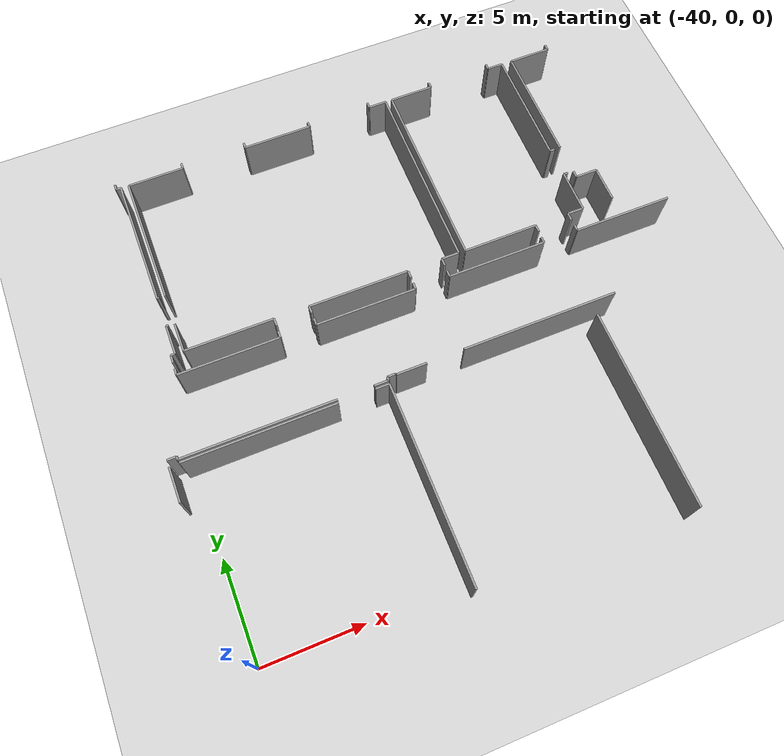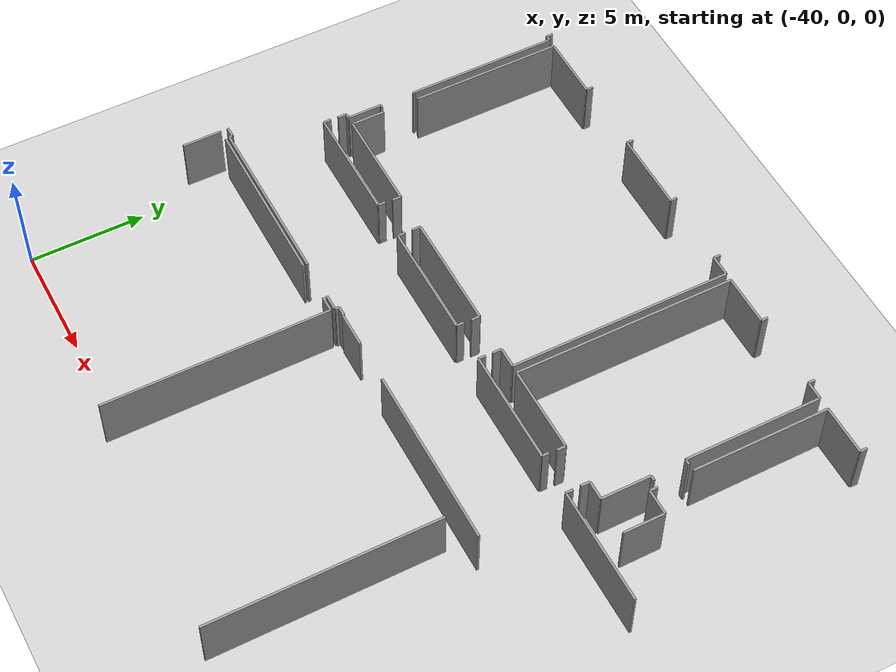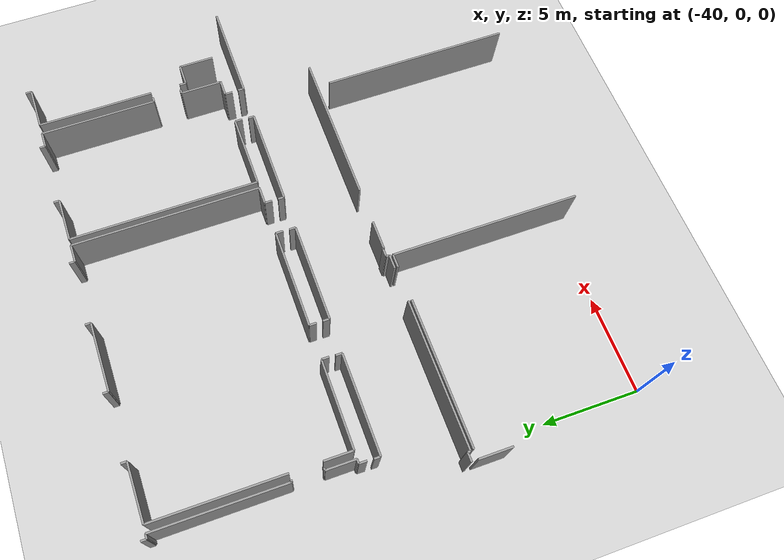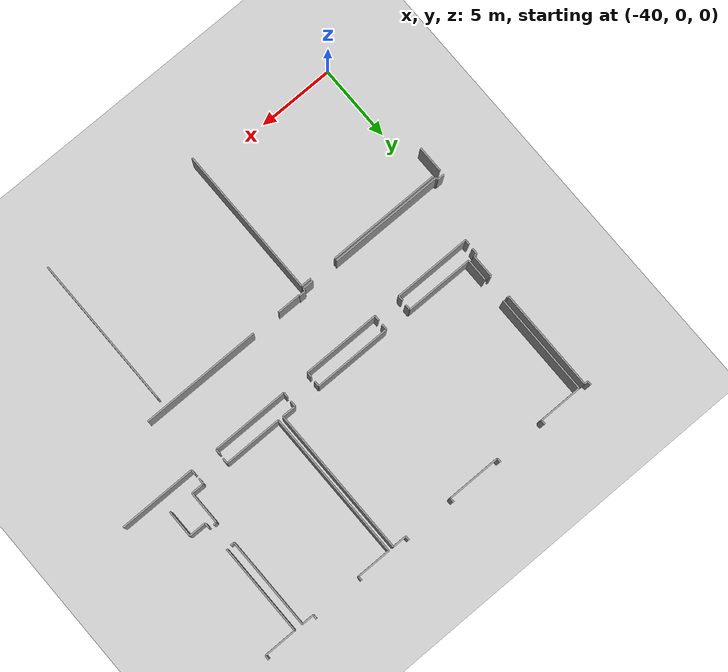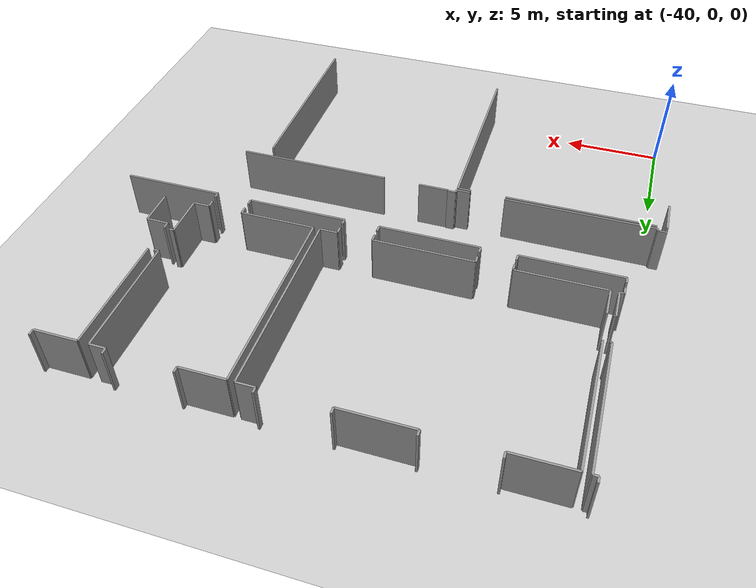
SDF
<sdf version="1.6">
 <world name="default">
  <model name="ground_plane">
   <static>1</static>
   <link name="link">
    <collision name="collision">
     <geometry><plane><normal>0 0 1</normal><size>100 100</size></plane></geometry>
     <surface><friction><ode><mu>100</mu><mu2>50</mu2></ode></friction></surface>
    </collision>
    <visual name="visual">
     <cast_shadows>0</cast_shadows>
     <geometry><plane><normal>0 0 1</normal><size>100 100</size></plane></geometry>
     <material>
      <script><uri>file://media/materials/scripts/gazebo.material</uri><name>Gazebo/Grey</name></script>
     </material>
    </visual>
   </link>
  </model>
  <model name="0510032197_A_40_1_105">
   <static>1</static>
   <link name="Wall_37">
    <collision name="Wall_37_Collision">
     <geometry><box><size>0.279998474815 0.1 2.5</size></box></geometry>
     <pose>0.139999237408 0 1.25 0 0 0</pose>
    </collision>
    <visual name="Wall_37_Visual">
     <pose>0.139999237408 0 1.25 0 0 0</pose>
     <geometry><box><size>0.279998474815 0.1 2.5</size></box></geometry>
     <material>
      <script><uri>file://media/materials/scripts/gazebo.material</uri><name>Gazebo/Grey</name></script>
      <ambient>1 1 1 1</ambient>
     </material>
    </visual>
    <pose>26.2868109661 -0.0165228332846 0 0 0 -1.57079632679</pose>
   </link>
   <link name="Wall_38">
    <collision name="Wall_38_Collision">
     <geometry><box><size>0.234751331359 0.1 2.5</size></box></geometry>
     <pose>0.11737566568 0 1.25 0 0 0</pose>
    </collision>
    <visual name="Wall_38_Visual">
     <pose>0.11737566568 0 1.25 0 0 0</pose>
     <geometry><box><size>0.234751331359 0.1 2.5</size></box></geometry>
     <material>
      <script><uri>file://media/materials/scripts/gazebo.material</uri><name>Gazebo/Grey</name></script>
      <ambient>1 1 1 1</ambient>
     </material>
    </visual>
    <pose>26.2868109661 -0.2965213081 0 0 0 0.0</pose>
   </link>
   <link name="Wall_39">
    <collision name="Wall_39_Collision">
     <geometry><box><size>6.61599664459 0.1 2.5</size></box></geometry>
     <pose>3.3079983223 0 1.25 0 0 0</pose>
    </collision>
    <visual name="Wall_39_Visual">
     <pose>3.3079983223 0 1.25 0 0 0</pose>
     <geometry><box><size>6.61599664459 0.1 2.5</size></box></geometry>
     <material>
      <script><uri>file://media/materials/scripts/gazebo.material</uri><name>Gazebo/Grey</name></script>
      <ambient>1 1 1 1</ambient>
     </material>
    </visual>
    <pose>26.5215622974 -0.2965213081 0 0 0 -1.57079632679</pose>
   </link>
   <link name="Wall_40">
    <collision name="Wall_40_Collision">
     <geometry><box><size>0.105619034304 0.1 2.5</size></box></geometry>
     <pose>0.052809517152 0 1.25 0 0 0</pose>
    </collision>
    <visual name="Wall_40_Visual">
     <pose>0.052809517152 0 1.25 0 0 0</pose>
     <geometry><box><size>0.105619034304 0.1 2.5</size></box></geometry>
     <material>
      <script><uri>file://media/materials/scripts/gazebo.material</uri><name>Gazebo/Grey</name></script>
      <ambient>1 1 1 1</ambient>
     </material>
    </visual>
    <pose>26.5215622974 -6.91251795269 0 0 0 0.0</pose>
   </link>
   <link name="Wall_41">
    <collision name="Wall_41_Collision">
     <geometry><box><size>0.109050699678 0.1 2.5</size></box></geometry>
     <pose>0.0545253498392 0 1.25 0 0 0</pose>
    </collision>
    <visual name="Wall_41_Visual">
     <pose>0.0545253498392 0 1.25 0 0 0</pose>
     <geometry><box><size>0.109050699678 0.1 2.5</size></box></geometry>
     <material>
      <script><uri>file://media/materials/scripts/gazebo.material</uri><name>Gazebo/Grey</name></script>
      <ambient>1 1 1 1</ambient>
     </material>
    </visual>
    <pose>26.6271813317 -8.45867385198 0 0 0 3.14159265359</pose>
   </link>
   <link name="Wall_42">
    <collision name="Wall_42_Collision">
     <geometry><box><size>1.50345073018 0.1 2.5</size></box></geometry>
     <pose>0.751725365091 0 1.25 0 0 0</pose>
    </collision>
    <visual name="Wall_42_Visual">
     <pose>0.751725365091 0 1.25 0 0 0</pose>
     <geometry><box><size>1.50345073018 0.1 2.5</size></box></geometry>
     <material>
      <script><uri>file://media/materials/scripts/gazebo.material</uri><name>Gazebo/Grey</name></script>
      <ambient>1 1 1 1</ambient>
     </material>
    </visual>
    <pose>26.5181306321 -8.45867385198 0 0 0 -1.57079632679</pose>
   </link>
   <link name="Wall_43">
    <collision name="Wall_43_Collision">
     <geometry><box><size>0.215178128853 0.1 2.5</size></box></geometry>
     <pose>0.107589064426 0 1.25 0 0 0</pose>
    </collision>
    <visual name="Wall_43_Visual">
     <pose>0.107589064426 0 1.25 0 0 0</pose>
     <geometry><box><size>0.215178128853 0.1 2.5</size></box></geometry>
     <material>
      <script><uri>file://media/materials/scripts/gazebo.material</uri><name>Gazebo/Grey</name></script>
      <ambient>1 1 1 1</ambient>
     </material>
    </visual>
    <pose>26.5181306321 -9.96212458216 0 0 0 3.14159265359</pose>
   </link>
   <link name="Wall_44">
    <collision name="Wall_44_Collision">
     <geometry><box><size>0.390065964234 0.1 2.5</size></box></geometry>
     <pose>0.195032982117 0 1.25 0 0 0</pose>
    </collision>
    <visual name="Wall_44_Visual">
     <pose>0.195032982117 0 1.25 0 0 0</pose>
     <geometry><box><size>0.390065964234 0.1 2.5</size></box></geometry>
     <material>
      <script><uri>file://media/materials/scripts/gazebo.material</uri><name>Gazebo/Grey</name></script>
      <ambient>1 1 1 1</ambient>
     </material>
    </visual>
    <pose>26.3029525032 -9.96212458216 0 0 0 -1.57079632679</pose>
   </link>
   <link name="Wall_47">
    <collision name="Wall_47_Collision">
     <geometry><box><size>1.45972877134 0.1 2.5</size></box></geometry>
     <pose>0.729864385668 0 1.25 0 0 0</pose>
    </collision>
    <visual name="Wall_47_Visual">
     <pose>0.729864385668 0 1.25 0 0 0</pose>
     <geometry><box><size>1.45972877134 0.1 2.5</size></box></geometry>
     <material>
      <script><uri>file://media/materials/scripts/gazebo.material</uri><name>Gazebo/Grey</name></script>
      <ambient>1 1 1 1</ambient>
     </material>
    </visual>
    <pose>26.9181102963 -9.96898791291 0 0 0 1.57079632679</pose>
   </link>
   <link name="Wall_48">
    <collision name="Wall_48_Collision">
     <geometry><box><size>6.6051932536 0.1 2.5</size></box></geometry>
     <pose>3.3025966268 0 1.25 0 0 0</pose>
    </collision>
    <visual name="Wall_48_Visual">
     <pose>3.3025966268 0 1.25 0 0 0</pose>
     <geometry><box><size>6.6051932536 0.1 2.5</size></box></geometry>
     <material>
      <script><uri>file://media/materials/scripts/gazebo.material</uri><name>Gazebo/Grey</name></script>
      <ambient>1 1 1 1</ambient>
     </material>
    </visual>
    <pose>26.9181102963 -6.91772900011 0 0 0 1.57079632679</pose>
   </link>
   <link name="Wall_49">
    <collision name="Wall_49_Collision">
     <geometry><box><size>2.84103763393 0.1 2.5</size></box></geometry>
     <pose>1.42051881697 0 1.25 0 0 0</pose>
    </collision>
    <visual name="Wall_49_Visual">
     <pose>1.42051881697 0 1.25 0 0 0</pose>
     <geometry><box><size>2.84103763393 0.1 2.5</size></box></geometry>
     <material>
      <script><uri>file://media/materials/scripts/gazebo.material</uri><name>Gazebo/Grey</name></script>
      <ambient>1 1 1 1</ambient>
     </material>
    </visual>
    <pose>26.9181102963 -0.312535746514 0 0 0 0.0</pose>
   </link>
   <link name="Wall_50">
    <collision name="Wall_50_Collision">
     <geometry><box><size>0.297919393993 0.1 2.5</size></box></geometry>
     <pose>0.148959696997 0 1.25 0 0 0</pose>
    </collision>
    <visual name="Wall_50_Visual">
     <pose>0.148959696997 0 1.25 0 0 0</pose>
     <geometry><box><size>0.297919393993 0.1 2.5</size></box></geometry>
     <material>
      <script><uri>file://media/materials/scripts/gazebo.material</uri><name>Gazebo/Grey</name></script>
      <ambient>1 1 1 1</ambient>
     </material>
    </visual>
    <pose>29.7591479302 -0.312535746514 0 0 0 1.57079632679</pose>
   </link>
   <link name="Wall_51">
    <collision name="Wall_51_Collision">
     <geometry><box><size>0.28393853506 0.1 2.5</size></box></geometry>
     <pose>0.14196926753 0 1.25 0 0 0</pose>
    </collision>
    <visual name="Wall_51_Visual">
     <pose>0.14196926753 0 1.25 0 0 0</pose>
     <geometry><box><size>0.28393853506 0.1 2.5</size></box></geometry>
     <material>
      <script><uri>file://media/materials/scripts/gazebo.material</uri><name>Gazebo/Grey</name></script>
      <ambient>1 1 1 1</ambient>
     </material>
    </visual>
    <pose>33.1005732152 -0.014616352521 0 0 0 -1.57079632679</pose>
   </link>
   <link name="Wall_52">
    <collision name="Wall_52_Collision">
     <geometry><box><size>3.50462003838 0.1 2.5</size></box></geometry>
     <pose>1.75231001919 0 1.25 0 0 0</pose>
    </collision>
    <visual name="Wall_52_Visual">
     <pose>1.75231001919 0 1.25 0 0 0</pose>
     <geometry><box><size>3.50462003838 0.1 2.5</size></box></geometry>
     <material>
      <script><uri>file://media/materials/scripts/gazebo.material</uri><name>Gazebo/Grey</name></script>
      <ambient>1 1 1 1</ambient>
     </material>
    </visual>
    <pose>33.1005732152 -0.298554887581 0 0 0 0.0</pose>
   </link>
   <link name="Wall_53">
    <collision name="Wall_53_Collision">
     <geometry><box><size>0.288386990175 0.1 2.5</size></box></geometry>
     <pose>0.144193495088 0 1.25 0 0 0</pose>
    </collision>
    <visual name="Wall_53_Visual">
     <pose>0.144193495088 0 1.25 0 0 0</pose>
     <geometry><box><size>0.288386990175 0.1 2.5</size></box></geometry>
     <material>
      <script><uri>file://media/materials/scripts/gazebo.material</uri><name>Gazebo/Grey</name></script>
      <ambient>1 1 1 1</ambient>
     </material>
    </visual>
    <pose>36.6051932536 -0.298554887581 0 0 0 1.57079632679</pose>
   </link>
   <link name="Wall_54">
    <collision name="Wall_54_Collision">
     <geometry><box><size>0.289912174786 0.1 2.5</size></box></geometry>
     <pose>0.144956087393 0 1.25 0 0 0</pose>
    </collision>
    <visual name="Wall_54_Visual">
     <pose>0.144956087393 0 1.25 0 0 0</pose>
     <geometry><box><size>0.289912174786 0.1 2.5</size></box></geometry>
     <material>
      <script><uri>file://media/materials/scripts/gazebo.material</uri><name>Gazebo/Grey</name></script>
      <ambient>1 1 1 1</ambient>
     </material>
    </visual>
    <pose>39.9308582976 -0.0101678974059 0 0 0 -1.57079632679</pose>
   </link>
   <link name="Wall_55">
    <collision name="Wall_55_Collision">
     <geometry><box><size>0.917398543449 0.1 2.5</size></box></geometry>
     <pose>0.458699271724 0 1.25 0 0 0</pose>
    </collision>
    <visual name="Wall_55_Visual">
     <pose>0.458699271724 0 1.25 0 0 0</pose>
     <geometry><box><size>0.917398543449 0.1 2.5</size></box></geometry>
     <material>
      <script><uri>file://media/materials/scripts/gazebo.material</uri><name>Gazebo/Grey</name></script>
      <ambient>1 1 1 1</ambient>
     </material>
    </visual>
    <pose>39.9308582976 -0.300080072192 0 0 0 0.0</pose>
   </link>
   <link name="Wall_56">
    <collision name="Wall_56_Collision">
     <geometry><box><size>9.67666086249 0.1 2.5</size></box></geometry>
     <pose>4.83833043125 0 1.25 0 0 0</pose>
    </collision>
    <visual name="Wall_56_Visual">
     <pose>4.83833043125 0 1.25 0 0 0</pose>
     <geometry><box><size>9.67666086249 0.1 2.5</size></box></geometry>
     <material>
      <script><uri>file://media/materials/scripts/gazebo.material</uri><name>Gazebo/Grey</name></script>
      <ambient>1 1 1 1</ambient>
     </material>
    </visual>
    <pose>40.8482568411 -0.300080072192 0 0 0 -1.57079632679</pose>
   </link>
   <link name="Wall_57">
    <collision name="Wall_57_Collision">
     <geometry><box><size>0.902782190928 0.1 2.5</size></box></geometry>
     <pose>0.451391095464 0 1.25 0 0 0</pose>
    </collision>
    <visual name="Wall_57_Visual">
     <pose>0.451391095464 0 1.25 0 0 0</pose>
     <geometry><box><size>0.902782190928 0.1 2.5</size></box></geometry>
     <material>
      <script><uri>file://media/materials/scripts/gazebo.material</uri><name>Gazebo/Grey</name></script>
      <ambient>1 1 1 1</ambient>
     </material>
    </visual>
    <pose>40.8482568411 -9.97674093468 0 0 0 3.14159265359</pose>
   </link>
   <link name="Wall_58">
    <collision name="Wall_58_Collision">
     <geometry><box><size>0.381169054004 0.1 2.5</size></box></geometry>
     <pose>0.190584527002 0 1.25 0 0 0</pose>
    </collision>
    <visual name="Wall_58_Visual">
     <pose>0.190584527002 0 1.25 0 0 0</pose>
     <geometry><box><size>0.381169054004 0.1 2.5</size></box></geometry>
     <material>
      <script><uri>file://media/materials/scripts/gazebo.material</uri><name>Gazebo/Grey</name></script>
      <ambient>1 1 1 1</ambient>
     </material>
    </visual>
    <pose>39.9454746502 -9.97674093468 0 0 0 -1.57079632679</pose>
   </link>
   <link name="Wall_59">
    <collision name="Wall_59_Collision">
     <geometry><box><size>0.373797328385 0.1 2.5</size></box></geometry>
     <pose>0.186898664192 0 1.25 0 0 0</pose>
    </collision>
    <visual name="Wall_59_Visual">
     <pose>0.186898664192 0 1.25 0 0 0</pose>
     <geometry><box><size>0.373797328385 0.1 2.5</size></box></geometry>
     <material>
      <script><uri>file://media/materials/scripts/gazebo.material</uri><name>Gazebo/Grey</name></script>
      <ambient>1 1 1 1</ambient>
     </material>
    </visual>
    <pose>38.1732101323 -10.3579099887 0 0 0 1.57079632679</pose>
   </link>
   <link name="Wall_60">
    <collision name="Wall_60_Collision">
     <geometry><box><size>5.06246901969 0.1 2.5</size></box></geometry>
     <pose>2.53123450984 0 1.25 0 0 0</pose>
    </collision>
    <visual name="Wall_60_Visual">
     <pose>2.53123450984 0 1.25 0 0 0</pose>
     <geometry><box><size>5.06246901969 0.1 2.5</size></box></geometry>
     <material>
      <script><uri>file://media/materials/scripts/gazebo.material</uri><name>Gazebo/Grey</name></script>
      <ambient>1 1 1 1</ambient>
     </material>
    </visual>
    <pose>38.1732101323 -9.9841126603 0 0 0 3.14159265359</pose>
   </link>
   <link name="Wall_61">
    <collision name="Wall_61_Collision">
     <geometry><box><size>0.37036566301 0.1 2.5</size></box></geometry>
     <pose>0.185182831505 0 1.25 0 0 0</pose>
    </collision>
    <visual name="Wall_61_Visual">
     <pose>0.185182831505 0 1.25 0 0 0</pose>
     <geometry><box><size>0.37036566301 0.1 2.5</size></box></geometry>
     <material>
      <script><uri>file://media/materials/scripts/gazebo.material</uri><name>Gazebo/Grey</name></script>
      <ambient>1 1 1 1</ambient>
     </material>
    </visual>
    <pose>33.1107411126 -9.9841126603 0 0 0 -1.57079632679</pose>
   </link>
   <link name="Wall_62">
    <collision name="Wall_62_Collision">
     <geometry><box><size>0.375830907866 0.1 2.5</size></box></geometry>
     <pose>0.187915453933 0 1.25 0 0 0</pose>
    </collision>
    <visual name="Wall_62_Visual">
     <pose>0.187915453933 0 1.25 0 0 0</pose>
     <geometry><box><size>0.375830907866 0.1 2.5</size></box></geometry>
     <material>
      <script><uri>file://media/materials/scripts/gazebo.material</uri><name>Gazebo/Grey</name></script>
      <ambient>1 1 1 1</ambient>
     </material>
    </visual>
    <pose>31.3527116511 -10.3544783233 0 0 0 1.57079632679</pose>
   </link>
   <link name="Wall_63">
    <collision name="Wall_63_Collision">
     <geometry><box><size>4.43461187508 0.1 2.5</size></box></geometry>
     <pose>2.21730593754 0 1.25 0 0 0</pose>
    </collision>
    <visual name="Wall_63_Visual">
     <pose>2.21730593754 0 1.25 0 0 0</pose>
     <geometry><box><size>4.43461187508 0.1 2.5</size></box></geometry>
     <material>
      <script><uri>file://media/materials/scripts/gazebo.material</uri><name>Gazebo/Grey</name></script>
      <ambient>1 1 1 1</ambient>
     </material>
    </visual>
    <pose>31.3527116511 -9.97864741545 0 0 0 3.13941444489</pose>
   </link>
   <link name="Wall_64">
    <collision name="Wall_64_Collision">
     <geometry><box><size>9.68568487144 0.1 2.5</size></box></geometry>
     <pose>4.84284243572 0 1.25 0 0 0</pose>
    </collision>
    <visual name="Wall_64_Visual">
     <pose>4.84284243572 0 1.25 0 0 0</pose>
     <geometry><box><size>9.68568487144 0.1 2.5</size></box></geometry>
     <material>
      <script><uri>file://media/materials/scripts/gazebo.material</uri><name>Gazebo/Grey</name></script>
      <ambient>1 1 1 1</ambient>
     </material>
    </visual>
    <pose>41.1910420824 -9.9884340167 0 0 0 1.57079632679</pose>
   </link>
   <link name="Wall_65">
    <collision name="Wall_65_Collision">
     <geometry><box><size>2.23973360109 0.1 2.5</size></box></geometry>
     <pose>1.11986680054 0 1.25 0 0 0</pose>
    </collision>
    <visual name="Wall_65_Visual">
     <pose>1.11986680054 0 1.25 0 0 0</pose>
     <geometry><box><size>2.23973360109 0.1 2.5</size></box></geometry>
     <material>
      <script><uri>file://media/materials/scripts/gazebo.material</uri><name>Gazebo/Grey</name></script>
      <ambient>1 1 1 1</ambient>
     </material>
    </visual>
    <pose>41.1910420824 -0.302749145261 0 0 0 0.0</pose>
   </link>
   <link name="Wall_66">
    <collision name="Wall_66_Collision">
     <geometry><box><size>0.292581247855 0.1 2.5</size></box></geometry>
     <pose>0.146290623928 0 1.25 0 0 0</pose>
    </collision>
    <visual name="Wall_66_Visual">
     <pose>0.146290623928 0 1.25 0 0 0</pose>
     <geometry><box><size>0.292581247855 0.1 2.5</size></box></geometry>
     <material>
      <script><uri>file://media/materials/scripts/gazebo.material</uri><name>Gazebo/Grey</name></script>
      <ambient>1 1 1 1</ambient>
     </material>
    </visual>
    <pose>43.4307756835 -0.302749145261 0 0 0 1.57079632679</pose>
   </link>
   <link name="Wall_67">
    <collision name="Wall_67_Collision">
     <geometry><box><size>0.29702970297 0.1 2.5</size></box></geometry>
     <pose>0.148514851485 0 1.25 0 0 0</pose>
    </collision>
    <visual name="Wall_67_Visual">
     <pose>0.148514851485 0 1.25 0 0 0</pose>
     <geometry><box><size>0.29702970297 0.1 2.5</size></box></geometry>
     <material>
      <script><uri>file://media/materials/scripts/gazebo.material</uri><name>Gazebo/Grey</name></script>
      <ambient>1 1 1 1</ambient>
     </material>
    </visual>
    <pose>46.7598723929 -0.0101678974059 0 0 0 -1.57079632679</pose>
   </link>
   <link name="Wall_68">
    <collision name="Wall_68_Collision">
     <geometry><box><size>0.802501302762 0.1 2.5</size></box></geometry>
     <pose>0.401250651381 0 1.25 0 0 0</pose>
    </collision>
    <visual name="Wall_68_Visual">
     <pose>0.401250651381 0 1.25 0 0 0</pose>
     <geometry><box><size>0.802501302762 0.1 2.5</size></box></geometry>
     <material>
      <script><uri>file://media/materials/scripts/gazebo.material</uri><name>Gazebo/Grey</name></script>
      <ambient>1 1 1 1</ambient>
     </material>
    </visual>
    <pose>46.7598723929 -0.307197600376 0 0 0 0.0</pose>
   </link>
   <link name="Wall_69">
    <collision name="Wall_69_Collision">
     <geometry><box><size>5.98406182082 0.1 2.5</size></box></geometry>
     <pose>2.99203091041 0 1.25 0 0 0</pose>
    </collision>
    <visual name="Wall_69_Visual">
     <pose>2.99203091041 0 1.25 0 0 0</pose>
     <geometry><box><size>5.98406182082 0.1 2.5</size></box></geometry>
     <material>
      <script><uri>file://media/materials/scripts/gazebo.material</uri><name>Gazebo/Grey</name></script>
      <ambient>1 1 1 1</ambient>
     </material>
    </visual>
    <pose>47.5623736956 -0.307197600376 0 0 0 -1.57079632679</pose>
   </link>
   <link name="Wall_70">
    <collision name="Wall_70_Collision">
     <geometry><box><size>0.246444413376 0.1 2.5</size></box></geometry>
     <pose>0.123222206688 0 1.25 0 0 0</pose>
    </collision>
    <visual name="Wall_70_Visual">
     <pose>0.123222206688 0 1.25 0 0 0</pose>
     <geometry><box><size>0.246444413376 0.1 2.5</size></box></geometry>
     <material>
      <script><uri>file://media/materials/scripts/gazebo.material</uri><name>Gazebo/Grey</name></script>
      <ambient>1 1 1 1</ambient>
     </material>
    </visual>
    <pose>47.5623736956 -6.29125942119 0 0 0 0.0</pose>
   </link>
   <link name="Wall_71">
    <collision name="Wall_71_Collision">
     <geometry><box><size>0.221151768579 0.1 2.5</size></box></geometry>
     <pose>0.110575884289 0 1.25 0 0 0</pose>
    </collision>
    <visual name="Wall_71_Visual">
     <pose>0.110575884289 0 1.25 0 0 0</pose>
     <geometry><box><size>0.221151768579 0.1 2.5</size></box></geometry>
     <material>
      <script><uri>file://media/materials/scripts/gazebo.material</uri><name>Gazebo/Grey</name></script>
      <ambient>1 1 1 1</ambient>
     </material>
    </visual>
    <pose>47.808818109 -7.80780131928 0 0 0 3.14159265359</pose>
   </link>
   <link name="Wall_72">
    <collision name="Wall_72_Collision">
     <geometry><box><size>2.15483165775 0.1 2.5</size></box></geometry>
     <pose>1.07741582887 0 1.25 0 0 0</pose>
    </collision>
    <visual name="Wall_72_Visual">
     <pose>1.07741582887 0 1.25 0 0 0</pose>
     <geometry><box><size>2.15483165775 0.1 2.5</size></box></geometry>
     <material>
      <script><uri>file://media/materials/scripts/gazebo.material</uri><name>Gazebo/Grey</name></script>
      <ambient>1 1 1 1</ambient>
     </material>
    </visual>
    <pose>47.5876663404 -7.80780131928 0 0 0 -1.57079632679</pose>
   </link>
   <link name="Wall_73">
    <collision name="Wall_73_Collision">
     <geometry><box><size>0.827793947559 0.1 2.5</size></box></geometry>
     <pose>0.41389697378 0 1.25 0 0 0</pose>
    </collision>
    <visual name="Wall_73_Visual">
     <pose>0.41389697378 0 1.25 0 0 0</pose>
     <geometry><box><size>0.827793947559 0.1 2.5</size></box></geometry>
     <material>
      <script><uri>file://media/materials/scripts/gazebo.material</uri><name>Gazebo/Grey</name></script>
      <ambient>1 1 1 1</ambient>
     </material>
    </visual>
    <pose>47.5876663404 -9.96263297703 0 0 0 3.14159265359</pose>
   </link>
   <link name="Wall_74">
    <collision name="Wall_74_Collision">
     <geometry><box><size>0.39184534628 0.1 2.5</size></box></geometry>
     <pose>0.19592267314 0 1.25 0 0 0</pose>
    </collision>
    <visual name="Wall_74_Visual">
     <pose>0.19592267314 0 1.25 0 0 0</pose>
     <geometry><box><size>0.39184534628 0.1 2.5</size></box></geometry>
     <material>
      <script><uri>file://media/materials/scripts/gazebo.material</uri><name>Gazebo/Grey</name></script>
      <ambient>1 1 1 1</ambient>
     </material>
    </visual>
    <pose>46.7598723929 -9.96263297703 0 0 0 -1.57079632679</pose>
   </link>
   <link name="Wall_75">
    <collision name="Wall_75_Collision">
     <geometry><box><size>0.37773738863 0.1 2.5</size></box></geometry>
     <pose>0.188868694315 0 1.25 0 0 0</pose>
    </collision>
    <visual name="Wall_75_Visual">
     <pose>0.188868694315 0 1.25 0 0 0</pose>
     <geometry><box><size>0.37773738863 0.1 2.5</size></box></geometry>
     <material>
      <script><uri>file://media/materials/scripts/gazebo.material</uri><name>Gazebo/Grey</name></script>
      <ambient>1 1 1 1</ambient>
     </material>
    </visual>
    <pose>44.9813800379 -10.3544783233 0 0 0 1.57079632679</pose>
   </link>
   <link name="Wall_76">
    <collision name="Wall_76_Collision">
     <geometry><box><size>3.79035599186 0.1 2.5</size></box></geometry>
     <pose>1.89517799593 0 1.25 0 0 0</pose>
    </collision>
    <visual name="Wall_76_Visual">
     <pose>1.89517799593 0 1.25 0 0 0</pose>
     <geometry><box><size>3.79035599186 0.1 2.5</size></box></geometry>
     <material>
      <script><uri>file://media/materials/scripts/gazebo.material</uri><name>Gazebo/Grey</name></script>
      <ambient>1 1 1 1</ambient>
     </material>
    </visual>
    <pose>44.9813800379 -9.97674093468 0 0 0 -3.13850769255</pose>
   </link>
   <link name="Wall_77">
    <collision name="Wall_77_Collision">
     <geometry><box><size>1.79094802933 0.1 2.5</size></box></geometry>
     <pose>0.895474014667 0 1.25 0 0 0</pose>
    </collision>
    <visual name="Wall_77_Visual">
     <pose>0.895474014667 0 1.25 0 0 0</pose>
     <geometry><box><size>1.79094802933 0.1 2.5</size></box></geometry>
     <material>
      <script><uri>file://media/materials/scripts/gazebo.material</uri><name>Gazebo/Grey</name></script>
      <ambient>1 1 1 1</ambient>
     </material>
    </visual>
    <pose>49.2220287497 -9.98004550134 0 0 0 1.57079632679</pose>
   </link>
   <link name="Wall_78">
    <collision name="Wall_78_Collision">
     <geometry><box><size>1.10982600186 0.1 2.5</size></box></geometry>
     <pose>0.554913000928 0 1.25 0 0 0</pose>
    </collision>
    <visual name="Wall_78_Visual">
     <pose>0.554913000928 0 1.25 0 0 0</pose>
     <geometry><box><size>1.10982600186 0.1 2.5</size></box></geometry>
     <material>
      <script><uri>file://media/materials/scripts/gazebo.material</uri><name>Gazebo/Grey</name></script>
      <ambient>1 1 1 1</ambient>
     </material>
    </visual>
    <pose>49.2220287497 -8.18909747201 0 0 0 3.14159265359</pose>
   </link>
   <link name="Wall_79">
    <collision name="Wall_79_Collision">
     <geometry><box><size>0.343293636167 0.1 2.5</size></box></geometry>
     <pose>0.171646818084 0 1.25 0 0 0</pose>
    </collision>
    <visual name="Wall_79_Visual">
     <pose>0.171646818084 0 1.25 0 0 0</pose>
     <geometry><box><size>0.343293636167 0.1 2.5</size></box></geometry>
     <material>
      <script><uri>file://media/materials/scripts/gazebo.material</uri><name>Gazebo/Grey</name></script>
      <ambient>1 1 1 1</ambient>
     </material>
    </visual>
    <pose>48.1122027479 -8.18909747201 0 0 0 1.57079632679</pose>
   </link>
   <link name="Wall_80">
    <collision name="Wall_80_Collision">
     <geometry><box><size>5.97338552854 0.1 2.5</size></box></geometry>
     <pose>2.98669276427 0 1.25 0 0 0</pose>
    </collision>
    <visual name="Wall_80_Visual">
     <pose>2.98669276427 0 1.25 0 0 0</pose>
     <geometry><box><size>5.97338552854 0.1 2.5</size></box></geometry>
     <material>
      <script><uri>file://media/materials/scripts/gazebo.material</uri><name>Gazebo/Grey</name></script>
      <ambient>1 1 1 1</ambient>
     </material>
    </visual>
    <pose>48.1122027479 -6.28592127505 0 0 0 1.57079632679</pose>
   </link>
   <link name="Wall_81">
    <collision name="Wall_81_Collision">
     <geometry><box><size>2.16144079106 0.1 2.5</size></box></geometry>
     <pose>1.08072039553 0 1.25 0 0 0</pose>
    </collision>
    <visual name="Wall_81_Visual">
     <pose>1.08072039553 0 1.25 0 0 0</pose>
     <geometry><box><size>2.16144079106 0.1 2.5</size></box></geometry>
     <material>
      <script><uri>file://media/materials/scripts/gazebo.material</uri><name>Gazebo/Grey</name></script>
      <ambient>1 1 1 1</ambient>
     </material>
    </visual>
    <pose>48.1122027479 -0.312535746514 0 0 0 0.0</pose>
   </link>
   <link name="Wall_82">
    <collision name="Wall_82_Collision">
     <geometry><box><size>0.305291119613 0.1 2.5</size></box></geometry>
     <pose>0.152645559806 0 1.25 0 0 0</pose>
    </collision>
    <visual name="Wall_82_Visual">
     <pose>0.152645559806 0 1.25 0 0 0</pose>
     <geometry><box><size>0.305291119613 0.1 2.5</size></box></geometry>
     <material>
      <script><uri>file://media/materials/scripts/gazebo.material</uri><name>Gazebo/Grey</name></script>
      <ambient>1 1 1 1</ambient>
     </material>
    </visual>
    <pose>50.2736435389 -0.312535746514 0 0 0 1.57079632679</pose>
   </link>
   <link name="Wall_319">
    <collision name="Wall_319_Collision">
     <geometry><box><size>9.86540245809 0.1 2.5</size></box></geometry>
     <pose>4.93270122904 0 1.25 0 0 0</pose>
    </collision>
    <visual name="Wall_319_Visual">
     <pose>4.93270122904 0 1.25 0 0 0</pose>
     <geometry><box><size>9.86540245809 0.1 2.5</size></box></geometry>
     <material>
      <script><uri>file://media/materials/scripts/gazebo.material</uri><name>Gazebo/Grey</name></script>
      <ambient>1 1 1 1</ambient>
     </material>
    </visual>
    <pose>45.6228472655 -15.4161847507 0 0 0 -1.57079632679</pose>
   </link>
   <link name="Wall_322">
    <collision name="Wall_322_Collision">
     <geometry><box><size>7.49640946123 0.1 2.5</size></box></geometry>
     <pose>3.74820473061 0 1.25 0 0 0</pose>
    </collision>
    <visual name="Wall_322_Visual">
     <pose>3.74820473061 0 1.25 0 0 0</pose>
     <geometry><box><size>7.49640946123 0.1 2.5</size></box></geometry>
     <material>
      <script><uri>file://media/materials/scripts/gazebo.material</uri><name>Gazebo/Grey</name></script>
      <ambient>1 1 1 1</ambient>
     </material>
    </visual>
    <pose>25.2207069231 -15.0207806403 0 0 0 0.0</pose>
   </link>
   <link name="Wall_323">
    <collision name="Wall_323_Collision">
     <geometry><box><size>0.683028508242 0.1 2.5</size></box></geometry>
     <pose>0.341514254121 0 1.25 0 0 0</pose>
    </collision>
    <visual name="Wall_323_Visual">
     <pose>0.341514254121 0 1.25 0 0 0</pose>
     <geometry><box><size>0.683028508242 0.1 2.5</size></box></geometry>
     <material>
      <script><uri>file://media/materials/scripts/gazebo.material</uri><name>Gazebo/Grey</name></script>
      <ambient>1 1 1 1</ambient>
     </material>
    </visual>
    <pose>34.5189949033 -15.0207806403 0 0 0 0.0</pose>
   </link>
   <link name="Wall_324">
    <collision name="Wall_324_Collision">
     <geometry><box><size>9.81380037875 0.1 2.5</size></box></geometry>
     <pose>4.90690018938 0 1.25 0 0 0</pose>
    </collision>
    <visual name="Wall_324_Visual">
     <pose>4.90690018938 0 1.25 0 0 0</pose>
     <geometry><box><size>9.81380037875 0.1 2.5</size></box></geometry>
     <material>
      <script><uri>file://media/materials/scripts/gazebo.material</uri><name>Gazebo/Grey</name></script>
      <ambient>1 1 1 1</ambient>
     </material>
    </visual>
    <pose>35.2020234116 -15.0207806403 0 0 0 -1.57079632679</pose>
   </link>
   <link name="Wall_454">
    <collision name="Wall_454_Collision">
     <geometry><box><size>1.71316361418 0.1 2.5</size></box></geometry>
     <pose>0.85658180709 0 1.25 0 0 0</pose>
    </collision>
    <visual name="Wall_454_Visual">
     <pose>0.85658180709 0 1.25 0 0 0</pose>
     <geometry><box><size>1.71316361418 0.1 2.5</size></box></geometry>
     <material>
      <script><uri>file://media/materials/scripts/gazebo.material</uri><name>Gazebo/Grey</name></script>
      <ambient>1 1 1 1</ambient>
     </material>
    </visual>
    <pose>24.744595127 -15.0360324864 0 0 0 -1.57079632679</pose>
   </link>
   <link name="Wall_469">
    <collision name="Wall_469_Collision">
     <geometry><box><size>0.32168685418 0.1 2.5</size></box></geometry>
     <pose>0.16084342709 0 1.25 0 0 0</pose>
    </collision>
    <visual name="Wall_469_Visual">
     <pose>0.16084342709 0 1.25 0 0 0</pose>
     <geometry><box><size>0.32168685418 0.1 2.5</size></box></geometry>
     <material>
      <script><uri>file://media/materials/scripts/gazebo.material</uri><name>Gazebo/Grey</name></script>
      <ambient>1 1 1 1</ambient>
     </material>
    </visual>
    <pose>26.2798205366 -10.6709541301 0 0 0 -1.57079632679</pose>
   </link>
   <link name="Wall_470">
    <collision name="Wall_470_Collision">
     <geometry><box><size>5.04175192872 0.1 2.5</size></box></geometry>
     <pose>2.52087596436 0 1.25 0 0 0</pose>
    </collision>
    <visual name="Wall_470_Visual">
     <pose>2.52087596436 0 1.25 0 0 0</pose>
     <geometry><box><size>5.04175192872 0.1 2.5</size></box></geometry>
     <material>
      <script><uri>file://media/materials/scripts/gazebo.material</uri><name>Gazebo/Grey</name></script>
      <ambient>1 1 1 1</ambient>
     </material>
    </visual>
    <pose>26.2798205366 -10.9926409843 0 0 0 0.0</pose>
   </link>
   <link name="Wall_471">
    <collision name="Wall_471_Collision">
     <geometry><box><size>0.327279197753 0.1 2.5</size></box></geometry>
     <pose>0.163639598876 0 1.25 0 0 0</pose>
    </collision>
    <visual name="Wall_471_Visual">
     <pose>0.163639598876 0 1.25 0 0 0</pose>
     <geometry><box><size>0.327279197753 0.1 2.5</size></box></geometry>
     <material>
      <script><uri>file://media/materials/scripts/gazebo.material</uri><name>Gazebo/Grey</name></script>
      <ambient>1 1 1 1</ambient>
     </material>
    </visual>
    <pose>31.3215724653 -10.9926409843 0 0 0 1.57079632679</pose>
   </link>
   <link name="Wall_472">
    <collision name="Wall_472_Collision">
     <geometry><box><size>0.332871541326 0.1 2.5</size></box></geometry>
     <pose>0.166435770663 0 1.25 0 0 0</pose>
    </collision>
    <visual name="Wall_472_Visual">
     <pose>0.166435770663 0 1.25 0 0 0</pose>
     <geometry><box><size>0.332871541326 0.1 2.5</size></box></geometry>
     <material>
      <script><uri>file://media/materials/scripts/gazebo.material</uri><name>Gazebo/Grey</name></script>
      <ambient>1 1 1 1</ambient>
     </material>
    </visual>
    <pose>33.1076907434 -10.6653617865 0 0 0 -1.57079632679</pose>
   </link>
   <link name="Wall_473">
    <collision name="Wall_473_Collision">
     <geometry><box><size>5.04467519923 0.1 2.5</size></box></geometry>
     <pose>2.52233759961 0 1.25 0 0 0</pose>
    </collision>
    <visual name="Wall_473_Visual">
     <pose>2.52233759961 0 1.25 0 0 0</pose>
     <geometry><box><size>5.04467519923 0.1 2.5</size></box></geometry>
     <material>
      <script><uri>file://media/materials/scripts/gazebo.material</uri><name>Gazebo/Grey</name></script>
      <ambient>1 1 1 1</ambient>
     </material>
    </visual>
    <pose>33.1076907434 -10.9982333278 0 0 0 0.0</pose>
   </link>
   <link name="Wall_474">
    <collision name="Wall_474_Collision">
     <geometry><box><size>0.323084940073 0.1 2.5</size></box></geometry>
     <pose>0.161542470036 0 1.25 0 0 0</pose>
    </collision>
    <visual name="Wall_474_Visual">
     <pose>0.161542470036 0 1.25 0 0 0</pose>
     <geometry><box><size>0.323084940073 0.1 2.5</size></box></geometry>
     <material>
      <script><uri>file://media/materials/scripts/gazebo.material</uri><name>Gazebo/Grey</name></script>
      <ambient>1 1 1 1</ambient>
     </material>
    </visual>
    <pose>38.1523659426 -10.9982333278 0 0 0 1.57079632679</pose>
   </link>
   <link name="Wall_475">
    <collision name="Wall_475_Collision">
     <geometry><box><size>0.308976982422 0.1 2.5</size></box></geometry>
     <pose>0.154488491211 0 1.25 0 0 0</pose>
    </collision>
    <visual name="Wall_475_Visual">
     <pose>0.154488491211 0 1.25 0 0 0</pose>
     <geometry><box><size>0.308976982422 0.1 2.5</size></box></geometry>
     <material>
      <script><uri>file://media/materials/scripts/gazebo.material</uri><name>Gazebo/Grey</name></script>
      <ambient>1 1 1 1</ambient>
     </material>
    </visual>
    <pose>39.9355609502 -10.6751483878 0 0 0 -1.57079632679</pose>
   </link>
   <link name="Wall_476">
    <collision name="Wall_476_Collision">
     <geometry><box><size>5.01709477751 0.1 2.5</size></box></geometry>
     <pose>2.50854738876 0 1.25 0 0 0</pose>
    </collision>
    <visual name="Wall_476_Visual">
     <pose>2.50854738876 0 1.25 0 0 0</pose>
     <geometry><box><size>5.01709477751 0.1 2.5</size></box></geometry>
     <material>
      <script><uri>file://media/materials/scripts/gazebo.material</uri><name>Gazebo/Grey</name></script>
      <ambient>1 1 1 1</ambient>
     </material>
    </visual>
    <pose>39.9355609502 -10.9841253702 0 0 0 0.0</pose>
   </link>
   <link name="Wall_477">
    <collision name="Wall_477_Collision">
     <geometry><box><size>0.30122396065 0.1 2.5</size></box></geometry>
     <pose>0.150611980325 0 1.25 0 0 0</pose>
    </collision>
    <visual name="Wall_477_Visual">
     <pose>0.150611980325 0 1.25 0 0 0</pose>
     <geometry><box><size>0.30122396065 0.1 2.5</size></box></geometry>
     <material>
      <script><uri>file://media/materials/scripts/gazebo.material</uri><name>Gazebo/Grey</name></script>
      <ambient>1 1 1 1</ambient>
     </material>
    </visual>
    <pose>44.9526557277 -10.9841253702 0 0 0 1.57079632679</pose>
   </link>
   <link name="Wall_478">
    <collision name="Wall_478_Collision">
     <geometry><box><size>0.306689205506 0.1 2.5</size></box></geometry>
     <pose>0.153344602753 0 1.25 0 0 0</pose>
    </collision>
    <visual name="Wall_478_Visual">
     <pose>0.153344602753 0 1.25 0 0 0</pose>
     <geometry><box><size>0.306689205506 0.1 2.5</size></box></geometry>
     <material>
      <script><uri>file://media/materials/scripts/gazebo.material</uri><name>Gazebo/Grey</name></script>
      <ambient>1 1 1 1</ambient>
     </material>
    </visual>
    <pose>46.7711841788 -10.6829014095 0 0 0 -1.57079632679</pose>
   </link>
   <link name="Wall_479">
    <collision name="Wall_479_Collision">
     <geometry><box><size>5.02484779929 0.1 2.5</size></box></geometry>
     <pose>2.51242389964 0 1.25 0 0 0</pose>
    </collision>
    <visual name="Wall_479_Visual">
     <pose>2.51242389964 0 1.25 0 0 0</pose>
     <geometry><box><size>5.02484779929 0.1 2.5</size></box></geometry>
     <material>
      <script><uri>file://media/materials/scripts/gazebo.material</uri><name>Gazebo/Grey</name></script>
      <ambient>1 1 1 1</ambient>
     </material>
    </visual>
    <pose>46.7711841788 -10.989590615 0 0 0 0.0</pose>
   </link>
   <link name="Wall_533">
    <collision name="Wall_533_Collision">
     <geometry><box><size>7.84783741532 0.1 2.5</size></box></geometry>
     <pose>3.92391870766 0 1.25 0 0 0</pose>
    </collision>
    <visual name="Wall_533_Visual">
     <pose>3.92391870766 0 1.25 0 0 0</pose>
     <geometry><box><size>7.84783741532 0.1 2.5</size></box></geometry>
     <material>
      <script><uri>file://media/materials/scripts/gazebo.material</uri><name>Gazebo/Grey</name></script>
      <ambient>1 1 1 1</ambient>
     </material>
    </visual>
    <pose>46.9090862873 -14.7145998297 0 0 0 3.14159265359</pose>
   </link>
   <link name="Wall_534">
    <collision name="Wall_534_Collision">
     <geometry><box><size>1.52759948652 0.1 2.5</size></box></geometry>
     <pose>0.763799743261 0 1.25 0 0 0</pose>
    </collision>
    <visual name="Wall_534_Visual">
     <pose>0.763799743261 0 1.25 0 0 0</pose>
     <geometry><box><size>1.52759948652 0.1 2.5</size></box></geometry>
     <material>
      <script><uri>file://media/materials/scripts/gazebo.material</uri><name>Gazebo/Grey</name></script>
      <ambient>1 1 1 1</ambient>
     </material>
    </visual>
    <pose>37.1881950711 -14.7145998297 0 0 0 3.14159265359</pose>
   </link>
   <link name="Wall_535">
    <collision name="Wall_535_Collision">
     <geometry><box><size>0.0434677614103 0.1 2.5</size></box></geometry>
     <pose>0.0217338807051 0 1.25 0 0 0</pose>
    </collision>
    <visual name="Wall_535_Visual">
     <pose>0.0217338807051 0 1.25 0 0 0</pose>
     <geometry><box><size>0.0434677614103 0.1 2.5</size></box></geometry>
     <material>
      <script><uri>file://media/materials/scripts/gazebo.material</uri><name>Gazebo/Grey</name></script>
      <ambient>1 1 1 1</ambient>
     </material>
    </visual>
    <pose>35.6605955846 -14.7145998297 0 0 0 1.57079632679</pose>
   </link>
   <link name="Wall_536">
    <collision name="Wall_536_Collision">
     <geometry><box><size>0.434042120515 0.1 2.5</size></box></geometry>
     <pose>0.217021060258 0 1.25 0 0 0</pose>
    </collision>
    <visual name="Wall_536_Visual">
     <pose>0.217021060258 0 1.25 0 0 0</pose>
     <geometry><box><size>0.434042120515 0.1 2.5</size></box></geometry>
     <material>
      <script><uri>file://media/materials/scripts/gazebo.material</uri><name>Gazebo/Grey</name></script>
      <ambient>1 1 1 1</ambient>
     </material>
    </visual>
    <pose>35.6605955846 -14.6711320683 0 0 0 3.14159265359</pose>
   </link>
   <link name="Wall_537">
    <collision name="Wall_537_Collision">
     <geometry><box><size>0.181369869978 0.1 2.5</size></box></geometry>
     <pose>0.090684934989 0 1.25 0 0 0</pose>
    </collision>
    <visual name="Wall_537_Visual">
     <pose>0.090684934989 0 1.25 0 0 0</pose>
     <geometry><box><size>0.181369869978 0.1 2.5</size></box></geometry>
     <material>
      <script><uri>file://media/materials/scripts/gazebo.material</uri><name>Gazebo/Grey</name></script>
      <ambient>1 1 1 1</ambient>
     </material>
    </visual>
    <pose>35.2265534641 -14.6711320683 0 0 0 -1.57079632679</pose>
   </link>
   <link name="Wall_538">
    <collision name="Wall_538_Collision">
     <geometry><box><size>0.70882954791 0.1 2.5</size></box></geometry>
     <pose>0.354414773955 0 1.25 0 0 0</pose>
    </collision>
    <visual name="Wall_538_Visual">
     <pose>0.354414773955 0 1.25 0 0 0</pose>
     <geometry><box><size>0.70882954791 0.1 2.5</size></box></geometry>
     <material>
      <script><uri>file://media/materials/scripts/gazebo.material</uri><name>Gazebo/Grey</name></script>
      <ambient>1 1 1 1</ambient>
     </material>
    </visual>
    <pose>35.2265534641 -14.8525019383 0 0 0 3.14159265359</pose>
   </link>
   <link name="Wall_539">
    <collision name="Wall_539_Collision">
     <geometry><box><size>7.54381728288 0.1 2.5</size></box></geometry>
     <pose>3.77190864144 0 1.25 0 0 0</pose>
    </collision>
    <visual name="Wall_539_Visual">
     <pose>3.77190864144 0 1.25 0 0 0</pose>
     <geometry><box><size>7.54381728288 0.1 2.5</size></box></geometry>
     <material>
      <script><uri>file://media/materials/scripts/gazebo.material</uri><name>Gazebo/Grey</name></script>
      <ambient>1 1 1 1</ambient>
     </material>
    </visual>
    <pose>32.7313514407 -14.8525019383 0 0 0 3.14159265359</pose>
   </link>
   <link name="Wall_540">
    <collision name="Wall_540_Collision">
     <geometry><box><size>0.144257044446 0.1 2.5</size></box></geometry>
     <pose>0.0721285222232 0 1.25 0 0 0</pose>
    </collision>
    <visual name="Wall_540_Visual">
     <pose>0.0721285222232 0 1.25 0 0 0</pose>
     <geometry><box><size>0.144257044446 0.1 2.5</size></box></geometry>
     <material>
      <script><uri>file://media/materials/scripts/gazebo.material</uri><name>Gazebo/Grey</name></script>
      <ambient>1 1 1 1</ambient>
     </material>
    </visual>
    <pose>25.1875341578 -14.8525019383 0 0 0 1.57079632679</pose>
   </link>
   <link name="Wall_541">
    <collision name="Wall_541_Collision">
     <geometry><box><size>0.462130937099 0.1 2.5</size></box></geometry>
     <pose>0.231065468549 0 1.25 0 0 0</pose>
    </collision>
    <visual name="Wall_541_Visual">
     <pose>0.231065468549 0 1.25 0 0 0</pose>
     <geometry><box><size>0.462130937099 0.1 2.5</size></box></geometry>
     <material>
      <script><uri>file://media/materials/scripts/gazebo.material</uri><name>Gazebo/Grey</name></script>
      <ambient>1 1 1 1</ambient>
     </material>
    </visual>
    <pose>25.1875341578 -14.7082448938 0 0 0 3.14159265359</pose>
   </link>
   <pose>-65.5 24.1613162343 0 0 0 0</pose>
  </model>
 </world>
</sdf>
